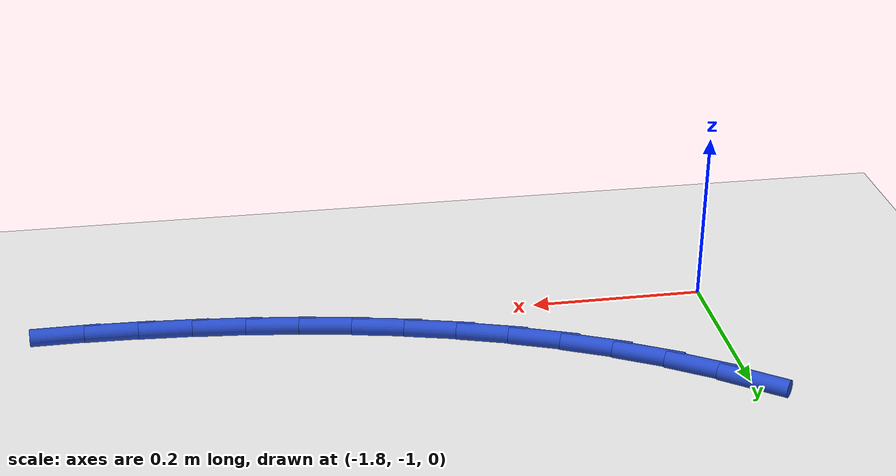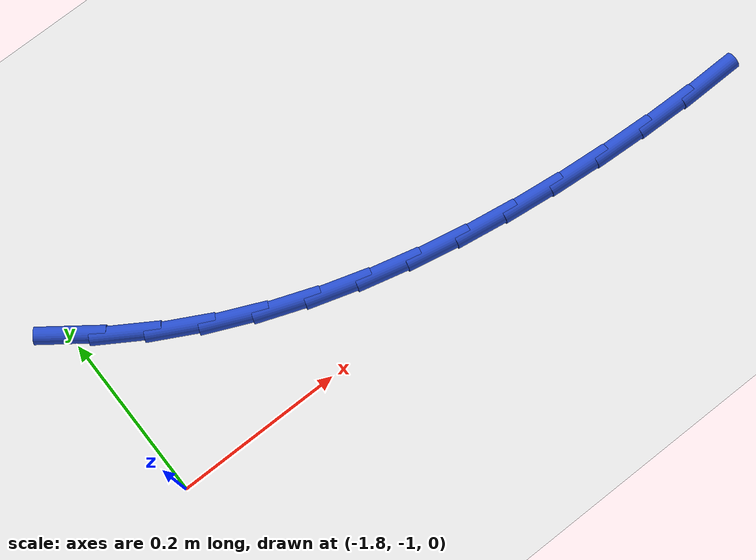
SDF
<sdf version="1.6">
 <world name="default">
  <model name="ground_plane">
   <static>1</static>
   <link name="link">
    <collision name="collision">
     <geometry><plane><normal>0 0 1</normal><size>100 100</size></plane></geometry>
     <surface><friction><ode><mu>100</mu><mu2>50</mu2></ode></friction></surface>
    </collision>
    <visual name="visual">
     <cast_shadows>0</cast_shadows>
     <geometry><plane><normal>0 0 1</normal><size>100 100</size></plane></geometry>
     <material>
      <script><uri>file://media/materials/scripts/gazebo.material</uri><name>Gazebo/WhiteGlow</name></script>
     </material>
    </visual>
   </link>
  </model>
  <model name="line">
   <link name="link_70">
    <pose>-1.7988528094611997 -0.7866666443856524 0.01 0 1.57 -0.6354284653834327</pose>
    <collision name="collision">
     <geometry><cylinder><radius>0.01</radius><length>0.08</length></cylinder></geometry>
    </collision>
    <visual name="visual">
     <material>
      <script><name>Gazebo/Blue</name><uri>file://media/materials/scripts/gazebo.material</uri></script>
     </material>
     <geometry><cylinder><radius>0.01</radius><length>0.08</length></cylinder></geometry>
    </visual>
   </link>
   <link name="link_71">
    <pose>-1.7499108445664013 -0.8227594901913967 0.01 0 1.57 -0.5598322792910558</pose>
    <collision name="collision">
     <geometry><cylinder><radius>0.01</radius><length>0.08</length></cylinder></geometry>
    </collision>
    <visual name="visual">
     <material>
      <script><name>Gazebo/Blue</name><uri>file://media/materials/scripts/gazebo.material</uri></script>
     </material>
     <geometry><cylinder><radius>0.01</radius><length>0.08</length></cylinder></geometry>
    </visual>
   </link>
   <link name="link_72">
    <pose>-1.698890545045869 -0.8547347238199142 0.01 0 1.57 -0.4861046542528467</pose>
    <collision name="collision">
     <geometry><cylinder><radius>0.01</radius><length>0.08</length></cylinder></geometry>
    </collision>
    <visual name="visual">
     <material>
      <script><name>Gazebo/Blue</name><uri>file://media/materials/scripts/gazebo.material</uri></script>
     </material>
     <geometry><cylinder><radius>0.01</radius><length>0.08</length></cylinder></geometry>
    </visual>
   </link>
   <link name="link_73">
    <pose>-1.6460147781878551 -0.8826740100493161 0.01 0 1.57 -0.4169808143257616</pose>
    <collision name="collision">
     <geometry><cylinder><radius>0.01</radius><length>0.08</length></cylinder></geometry>
    </collision>
    <visual name="visual">
     <material>
      <script><name>Gazebo/Blue</name><uri>file://media/materials/scripts/gazebo.material</uri></script>
     </material>
     <geometry><cylinder><radius>0.01</radius><length>0.08</length></cylinder></geometry>
    </visual>
   </link>
   <link name="link_74">
    <pose>-1.591475067369682 -0.9068327086486921 0.01 0 1.57 -0.3529610487199384</pose>
    <collision name="collision">
     <geometry><cylinder><radius>0.01</radius><length>0.08</length></cylinder></geometry>
    </collision>
    <visual name="visual">
     <material>
      <script><name>Gazebo/Blue</name><uri>file://media/materials/scripts/gazebo.material</uri></script>
     </material>
     <geometry><cylinder><radius>0.01</radius><length>0.08</length></cylinder></geometry>
    </visual>
   </link>
   <link name="link_75">
    <pose>-1.5354627984737237 -0.9274669413272685 0.01 0 1.57 -0.2943023389913839</pose>
    <collision name="collision">
     <geometry><cylinder><radius>0.01</radius><length>0.08</length></cylinder></geometry>
    </collision>
    <visual name="visual">
     <material>
      <script><name>Gazebo/Blue</name><uri>file://media/materials/scripts/gazebo.material</uri></script>
     </material>
     <geometry><cylinder><radius>0.01</radius><length>0.08</length></cylinder></geometry>
    </visual>
   </link>
   <link name="link_76">
    <pose>-1.4781693573823529 -0.944832829794274 0.01 0 1.57 -0.24107139781992037</pose>
    <collision name="collision">
     <geometry><cylinder><radius>0.01</radius><length>0.08</length></cylinder></geometry>
    </collision>
    <visual name="visual">
     <material>
      <script><name>Gazebo/Blue</name><uri>file://media/materials/scripts/gazebo.material</uri></script>
     </material>
     <geometry><cylinder><radius>0.01</radius><length>0.08</length></cylinder></geometry>
    </visual>
   </link>
   <link name="link_77">
    <pose>-1.4197861299779433 -0.9591864957589351 0.01 0 1.57 -0.19319500658245767</pose>
    <collision name="collision">
     <geometry><cylinder><radius>0.01</radius><length>0.08</length></cylinder></geometry>
    </collision>
    <visual name="visual">
     <material>
      <script><name>Gazebo/Blue</name><uri>file://media/materials/scripts/gazebo.material</uri></script>
     </material>
     <geometry><cylinder><radius>0.01</radius><length>0.08</length></cylinder></geometry>
    </visual>
   </link>
   <link name="link_78">
    <pose>-1.3605045021428683 -0.9707840609304804 0.01 0 1.57 -0.15050827417642063</pose>
    <collision name="collision">
     <geometry><cylinder><radius>0.01</radius><length>0.08</length></cylinder></geometry>
    </collision>
    <visual name="visual">
     <material>
      <script><name>Gazebo/Blue</name><uri>file://media/materials/scripts/gazebo.material</uri></script>
     </material>
     <geometry><cylinder><radius>0.01</radius><length>0.08</length></cylinder></geometry>
    </visual>
   </link>
   <link name="link_79">
    <pose>-1.3005158597595015 -0.9798816470181365 0.01 0 1.57 -0.11279596313954363</pose>
    <collision name="collision">
     <geometry><cylinder><radius>0.01</radius><length>0.08</length></cylinder></geometry>
    </collision>
    <visual name="visual">
     <material>
      <script><name>Gazebo/Blue</name><uri>file://media/materials/scripts/gazebo.material</uri></script>
     </material>
     <geometry><cylinder><radius>0.01</radius><length>0.08</length></cylinder></geometry>
    </visual>
   </link>
   <link name="link_80">
    <pose>-1.240011588710216 -0.9867353757311318 0.01 0 1.57 -0.07982528023284595</pose>
    <collision name="collision">
     <geometry><cylinder><radius>0.01</radius><length>0.08</length></cylinder></geometry>
    </collision>
    <visual name="visual">
     <material>
      <script><name>Gazebo/Blue</name><uri>file://media/materials/scripts/gazebo.material</uri></script>
     </material>
     <geometry><cylinder><radius>0.01</radius><length>0.08</length></cylinder></geometry>
    </visual>
   </link>
   <link name="link_81">
    <pose>-1.1791830748773862 -0.9916013687786935 0.01 0 1.57 -0.05053692701172408</pose>
    <collision name="collision">
     <geometry><cylinder><radius>0.01</radius><length>0.08</length></cylinder></geometry>
    </collision>
    <visual name="visual">
     <material>
      <script><name>Gazebo/Blue</name><uri>file://media/materials/scripts/gazebo.material</uri></script>
     </material>
     <geometry><cylinder><radius>0.01</radius><length>0.08</length></cylinder></geometry>
    </visual>
   </link>
   <link name="link_82">
    <pose>-1.1182174574469577 -0.9946850093705727 0.01 0 1.57 -0.01967107683734476</pose>
    <collision name="collision">
     <geometry><cylinder><radius>0.01</radius><length>0.08</length></cylinder></geometry>
    </collision>
    <visual name="visual">
     <material>
      <script><name>Gazebo/Blue</name><uri>file://media/materials/scripts/gazebo.material</uri></script>
     </material>
     <geometry><cylinder><radius>0.01</radius><length>0.08</length></cylinder></geometry>
    </visual>
   </link>
   <link name="link_83">
    <pose>-1.0572761188933701 -0.9958839457711389 0.01 0 1.57 0.014867954568209444</pose>
    <collision name="collision">
     <geometry><cylinder><radius>0.01</radius><length>0.08</length></cylinder></geometry>
    </collision>
    <visual name="visual">
     <material>
      <script><name>Gazebo/Blue</name><uri>file://media/materials/scripts/gazebo.material</uri></script>
     </material>
     <geometry><cylinder><radius>0.01</radius><length>0.08</length></cylinder></geometry>
    </visual>
   </link>
  </model>
 </world>
</sdf>
